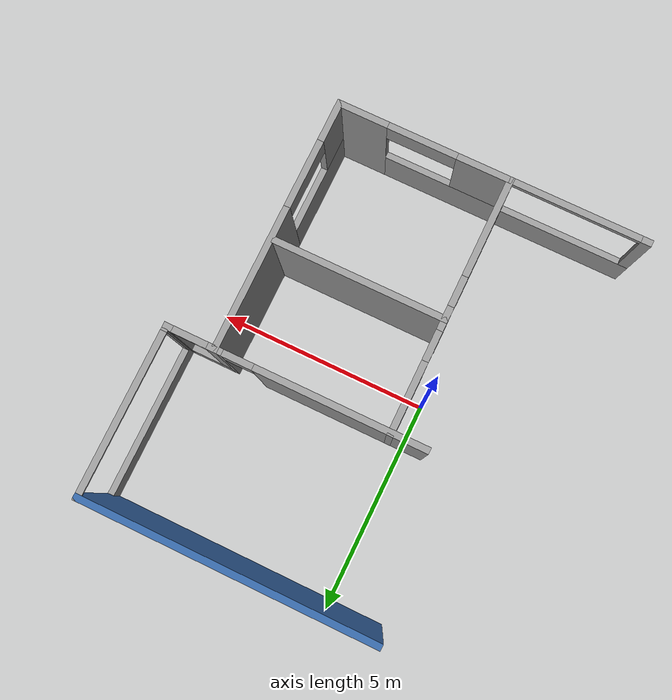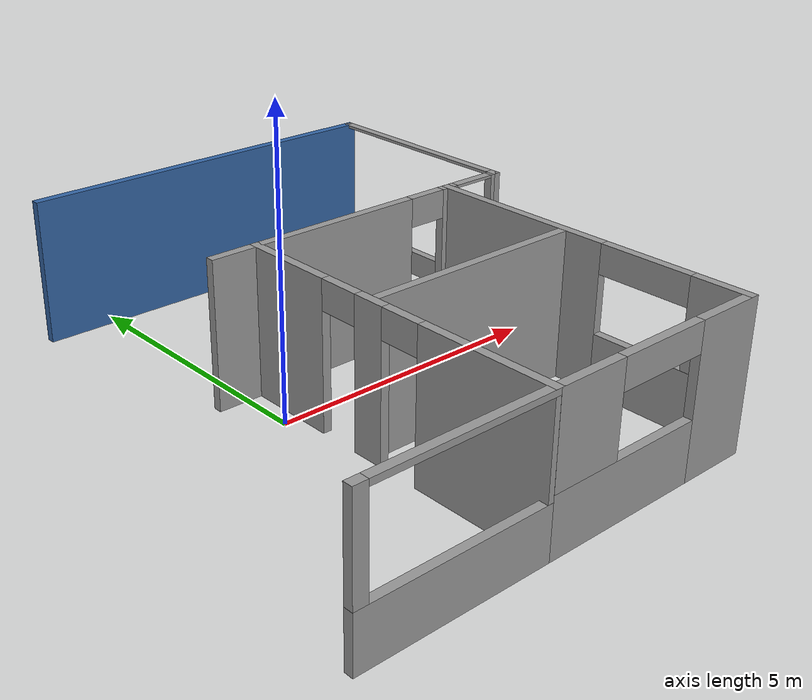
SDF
<sdf version="1.7">
 <model name="Myhouse">
  <link name="Wall_0">
   <pose>2.10158 4.8407 0 0 -0 0</pose>
   <visual name="Wall_0_Visual">
    <pose>0 0 1.25 0 -0 0</pose>
    <geometry><box><size>6.75 0.15 2.5</size></box></geometry>
    <material>
     <script><uri>file://media/materials/scripts/gazebo.material</uri><name>Gazebo/Grey</name></script>
     <ambient>0.203922 0.396078 0.643137 1</ambient>
     <shader type="pixel"/>
    </material>
    <meta><layer>0</layer></meta>
   </visual>
   <collision name="Wall_0_Collision">
    <pose>0 0 1.25 0 -0 0</pose>
    <geometry><box><size>6.75 0.15 2.5</size></box></geometry>
    <surface>
     <friction>
      <ode><mu>1</mu><mu2>1</mu2><fdir1>0 0 0</fdir1><slip1>0</slip1><slip2>0</slip2></ode>
      <torsional>
       <coefficient>1</coefficient>
       <patch_radius>0</patch_radius>
       <surface_radius>0</surface_radius>
       <use_patch_radius>1</use_patch_radius>
       <ode><slip>0</slip></ode>
      </torsional>
     </friction>
     <bounce><restitution_coefficient>0</restitution_coefficient><threshold>1e+06</threshold></bounce>
     <contact>
      <collide_without_contact>0</collide_without_contact>
      <collide_without_contact_bitmask>1</collide_without_contact_bitmask>
      <collide_bitmask>1</collide_bitmask>
      <ode>
       <soft_cfm>0</soft_cfm>
       <soft_erp>0.2</soft_erp>
       <kp>1e+13</kp>
       <kd>1</kd>
       <max_vel>0.01</max_vel>
       <min_depth>0</min_depth>
      </ode>
      <bullet>
       <split_impulse>1</split_impulse>
       <split_impulse_penetration_threshold>-0.01</split_impulse_penetration_threshold>
       <soft_cfm>0</soft_cfm>
       <soft_erp>0.2</soft_erp>
       <kp>1e+13</kp>
       <kd>1</kd>
      </bullet>
     </contact>
    </surface>
   </collision>
  </link>
  <link name="Wall_1">
   <pose>5.39997 2.92495 0 0 0 -1.57164</pose>
   <visual name="Wall_1_Visual_0">
    <pose>-1.94391 0 1.25 0 -0 0</pose>
    <geometry><box><size>0.093734 0.15 2.5</size></box></geometry>
    <material>
     <script><uri>file://media/materials/scripts/gazebo.material</uri><name>Gazebo/Grey</name></script>
     <ambient>1 1 1 1</ambient>
     <shader type="pixel"/>
    </material>
    <meta><layer>0</layer></meta>
   </visual>
   <visual name="Wall_1_Visual_1">
    <pose>0.046867 0 0.225 0 -0 0</pose>
    <geometry><box><size>3.88783 0.15 0.45</size></box></geometry>
    <material>
     <script><uri>file://media/materials/scripts/gazebo.material</uri><name>Gazebo/Grey</name></script>
     <ambient>1 1 1 1</ambient>
     <shader type="pixel"/>
    </material>
    <meta><layer>0</layer></meta>
   </visual>
   <visual name="Wall_1_Visual_2">
    <pose>1.89687 0 1.475 0 -0 0</pose>
    <geometry><box><size>0.187826 0.15 2.05</size></box></geometry>
    <material>
     <script><uri>file://media/materials/scripts/gazebo.material</uri><name>Gazebo/Grey</name></script>
     <ambient>1 1 1 1</ambient>
     <shader type="pixel"/>
    </material>
    <meta><layer>0</layer></meta>
   </visual>
   <visual name="Wall_1_Visual_3">
    <pose>-0.047046 0 2.475 0 -0 0</pose>
    <geometry><box><size>3.7 0.15 0.05</size></box></geometry>
    <material>
     <script><uri>file://media/materials/scripts/gazebo.material</uri><name>Gazebo/Grey</name></script>
     <ambient>1 1 1 1</ambient>
     <shader type="pixel"/>
    </material>
    <meta><layer>0</layer></meta>
   </visual>
   <collision name="Wall_1_Collision_0">
    <pose>-1.94391 0 1.25 0 -0 0</pose>
    <geometry><box><size>0.093734 0.15 2.5</size></box></geometry>
    <surface>
     <friction>
      <ode><mu>1</mu><mu2>1</mu2><fdir1>0 0 0</fdir1><slip1>0</slip1><slip2>0</slip2></ode>
      <torsional>
       <coefficient>1</coefficient>
       <patch_radius>0</patch_radius>
       <surface_radius>0</surface_radius>
       <use_patch_radius>1</use_patch_radius>
       <ode><slip>0</slip></ode>
      </torsional>
     </friction>
     <bounce><restitution_coefficient>0</restitution_coefficient><threshold>1e+06</threshold></bounce>
     <contact>
      <collide_without_contact>0</collide_without_contact>
      <collide_without_contact_bitmask>1</collide_without_contact_bitmask>
      <collide_bitmask>1</collide_bitmask>
      <ode>
       <soft_cfm>0</soft_cfm>
       <soft_erp>0.2</soft_erp>
       <kp>1e+13</kp>
       <kd>1</kd>
       <max_vel>0.01</max_vel>
       <min_depth>0</min_depth>
      </ode>
      <bullet>
       <split_impulse>1</split_impulse>
       <split_impulse_penetration_threshold>-0.01</split_impulse_penetration_threshold>
       <soft_cfm>0</soft_cfm>
       <soft_erp>0.2</soft_erp>
       <kp>1e+13</kp>
       <kd>1</kd>
      </bullet>
     </contact>
    </surface>
   </collision>
   <collision name="Wall_1_Collision_1">
    <pose>0.046867 0 0.225 0 -0 0</pose>
    <geometry><box><size>3.88783 0.15 0.45</size></box></geometry>
    <surface>
     <friction>
      <ode><mu>1</mu><mu2>1</mu2><fdir1>0 0 0</fdir1><slip1>0</slip1><slip2>0</slip2></ode>
      <torsional>
       <coefficient>1</coefficient>
       <patch_radius>0</patch_radius>
       <surface_radius>0</surface_radius>
       <use_patch_radius>1</use_patch_radius>
       <ode><slip>0</slip></ode>
      </torsional>
     </friction>
     <bounce><restitution_coefficient>0</restitution_coefficient><threshold>1e+06</threshold></bounce>
     <contact>
      <collide_without_contact>0</collide_without_contact>
      <collide_without_contact_bitmask>1</collide_without_contact_bitmask>
      <collide_bitmask>1</collide_bitmask>
      <ode>
       <soft_cfm>0</soft_cfm>
       <soft_erp>0.2</soft_erp>
       <kp>1e+13</kp>
       <kd>1</kd>
       <max_vel>0.01</max_vel>
       <min_depth>0</min_depth>
      </ode>
      <bullet>
       <split_impulse>1</split_impulse>
       <split_impulse_penetration_threshold>-0.01</split_impulse_penetration_threshold>
       <soft_cfm>0</soft_cfm>
       <soft_erp>0.2</soft_erp>
       <kp>1e+13</kp>
       <kd>1</kd>
      </bullet>
     </contact>
    </surface>
   </collision>
   <collision name="Wall_1_Collision_2">
    <pose>1.89687 0 1.475 0 -0 0</pose>
    <geometry><box><size>0.187826 0.15 2.05</size></box></geometry>
    <surface>
     <friction>
      <ode><mu>1</mu><mu2>1</mu2><fdir1>0 0 0</fdir1><slip1>0</slip1><slip2>0</slip2></ode>
      <torsional>
       <coefficient>1</coefficient>
       <patch_radius>0</patch_radius>
       <surface_radius>0</surface_radius>
       <use_patch_radius>1</use_patch_radius>
       <ode><slip>0</slip></ode>
      </torsional>
     </friction>
     <bounce><restitution_coefficient>0</restitution_coefficient><threshold>1e+06</threshold></bounce>
     <contact>
      <collide_without_contact>0</collide_without_contact>
      <collide_without_contact_bitmask>1</collide_without_contact_bitmask>
      <collide_bitmask>1</collide_bitmask>
      <ode>
       <soft_cfm>0</soft_cfm>
       <soft_erp>0.2</soft_erp>
       <kp>1e+13</kp>
       <kd>1</kd>
       <max_vel>0.01</max_vel>
       <min_depth>0</min_depth>
      </ode>
      <bullet>
       <split_impulse>1</split_impulse>
       <split_impulse_penetration_threshold>-0.01</split_impulse_penetration_threshold>
       <soft_cfm>0</soft_cfm>
       <soft_erp>0.2</soft_erp>
       <kp>1e+13</kp>
       <kd>1</kd>
      </bullet>
     </contact>
    </surface>
   </collision>
   <collision name="Wall_1_Collision_3">
    <pose>-0.047046 0 2.475 0 -0 0</pose>
    <geometry><box><size>3.7 0.15 0.05</size></box></geometry>
    <surface>
     <friction>
      <ode><mu>1</mu><mu2>1</mu2><fdir1>0 0 0</fdir1><slip1>0</slip1><slip2>0</slip2></ode>
      <torsional>
       <coefficient>1</coefficient>
       <patch_radius>0</patch_radius>
       <surface_radius>0</surface_radius>
       <use_patch_radius>1</use_patch_radius>
       <ode><slip>0</slip></ode>
      </torsional>
     </friction>
     <bounce><restitution_coefficient>0</restitution_coefficient><threshold>1e+06</threshold></bounce>
     <contact>
      <collide_without_contact>0</collide_without_contact>
      <collide_without_contact_bitmask>1</collide_without_contact_bitmask>
      <collide_bitmask>1</collide_bitmask>
      <ode>
       <soft_cfm>0</soft_cfm>
       <soft_erp>0.2</soft_erp>
       <kp>1e+13</kp>
       <kd>1</kd>
       <max_vel>0.01</max_vel>
       <min_depth>0</min_depth>
      </ode>
      <bullet>
       <split_impulse>1</split_impulse>
       <split_impulse_penetration_threshold>-0.01</split_impulse_penetration_threshold>
       <soft_cfm>0</soft_cfm>
       <soft_erp>0.2</soft_erp>
       <kp>1e+13</kp>
       <kd>1</kd>
      </bullet>
     </contact>
    </surface>
   </collision>
  </link>
  <link name="Wall_13">
   <pose>1.92675 1.00921 0 0 -0 3.14159</pose>
   <visual name="Wall_13_Visual_0">
    <pose>-2.32196 0 1.25 0 -0 0</pose>
    <geometry><box><size>0.249291 0.15 2.5</size></box></geometry>
    <material>
     <script><uri>file://media/materials/scripts/gazebo.material</uri><name>Gazebo/Grey</name></script>
     <ambient>1 1 1 1</ambient>
     <shader type="pixel"/>
    </material>
    <meta><layer>0</layer></meta>
   </visual>
   <visual name="Wall_13_Visual_1">
    <pose>0.474646 0 1.25 0 -0 0</pose>
    <geometry><box><size>3.94392 0.15 2.5</size></box></geometry>
    <material>
     <script><uri>file://media/materials/scripts/gazebo.material</uri><name>Gazebo/Grey</name></script>
     <ambient>1 1 1 1</ambient>
     <shader type="pixel"/>
    </material>
    <meta><layer>0</layer></meta>
   </visual>
   <visual name="Wall_13_Visual_2">
    <pose>-1.84732 0 2.25 0 -0 0</pose>
    <geometry><box><size>0.7 0.15 0.5</size></box></geometry>
    <material>
     <script><uri>file://media/materials/scripts/gazebo.material</uri><name>Gazebo/Grey</name></script>
     <ambient>1 1 1 1</ambient>
     <shader type="pixel"/>
    </material>
    <meta><layer>0</layer></meta>
   </visual>
   <collision name="Wall_13_Collision_0">
    <pose>-2.32196 0 1.25 0 -0 0</pose>
    <geometry><box><size>0.249291 0.15 2.5</size></box></geometry>
    <surface>
     <friction>
      <ode><mu>1</mu><mu2>1</mu2><fdir1>0 0 0</fdir1><slip1>0</slip1><slip2>0</slip2></ode>
      <torsional>
       <coefficient>1</coefficient>
       <patch_radius>0</patch_radius>
       <surface_radius>0</surface_radius>
       <use_patch_radius>1</use_patch_radius>
       <ode><slip>0</slip></ode>
      </torsional>
     </friction>
     <bounce><restitution_coefficient>0</restitution_coefficient><threshold>1e+06</threshold></bounce>
     <contact>
      <collide_without_contact>0</collide_without_contact>
      <collide_without_contact_bitmask>1</collide_without_contact_bitmask>
      <collide_bitmask>1</collide_bitmask>
      <ode>
       <soft_cfm>0</soft_cfm>
       <soft_erp>0.2</soft_erp>
       <kp>1e+13</kp>
       <kd>1</kd>
       <max_vel>0.01</max_vel>
       <min_depth>0</min_depth>
      </ode>
      <bullet>
       <split_impulse>1</split_impulse>
       <split_impulse_penetration_threshold>-0.01</split_impulse_penetration_threshold>
       <soft_cfm>0</soft_cfm>
       <soft_erp>0.2</soft_erp>
       <kp>1e+13</kp>
       <kd>1</kd>
      </bullet>
     </contact>
    </surface>
   </collision>
   <collision name="Wall_13_Collision_1">
    <pose>0.474646 0 1.25 0 -0 0</pose>
    <geometry><box><size>3.94392 0.15 2.5</size></box></geometry>
    <surface>
     <friction>
      <ode><mu>1</mu><mu2>1</mu2><fdir1>0 0 0</fdir1><slip1>0</slip1><slip2>0</slip2></ode>
      <torsional>
       <coefficient>1</coefficient>
       <patch_radius>0</patch_radius>
       <surface_radius>0</surface_radius>
       <use_patch_radius>1</use_patch_radius>
       <ode><slip>0</slip></ode>
      </torsional>
     </friction>
     <bounce><restitution_coefficient>0</restitution_coefficient><threshold>1e+06</threshold></bounce>
     <contact>
      <collide_without_contact>0</collide_without_contact>
      <collide_without_contact_bitmask>1</collide_without_contact_bitmask>
      <collide_bitmask>1</collide_bitmask>
      <ode>
       <soft_cfm>0</soft_cfm>
       <soft_erp>0.2</soft_erp>
       <kp>1e+13</kp>
       <kd>1</kd>
       <max_vel>0.01</max_vel>
       <min_depth>0</min_depth>
      </ode>
      <bullet>
       <split_impulse>1</split_impulse>
       <split_impulse_penetration_threshold>-0.01</split_impulse_penetration_threshold>
       <soft_cfm>0</soft_cfm>
       <soft_erp>0.2</soft_erp>
       <kp>1e+13</kp>
       <kd>1</kd>
      </bullet>
     </contact>
    </surface>
   </collision>
   <collision name="Wall_13_Collision_2">
    <pose>-1.84732 0 2.25 0 -0 0</pose>
    <geometry><box><size>0.7 0.15 0.5</size></box></geometry>
    <surface>
     <friction>
      <ode><mu>1</mu><mu2>1</mu2><fdir1>0 0 0</fdir1><slip1>0</slip1><slip2>0</slip2></ode>
      <torsional>
       <coefficient>1</coefficient>
       <patch_radius>0</patch_radius>
       <surface_radius>0</surface_radius>
       <use_patch_radius>1</use_patch_radius>
       <ode><slip>0</slip></ode>
      </torsional>
     </friction>
     <bounce><restitution_coefficient>0</restitution_coefficient><threshold>1e+06</threshold></bounce>
     <contact>
      <collide_without_contact>0</collide_without_contact>
      <collide_without_contact_bitmask>1</collide_without_contact_bitmask>
      <collide_bitmask>1</collide_bitmask>
      <ode>
       <soft_cfm>0</soft_cfm>
       <soft_erp>0.2</soft_erp>
       <kp>1e+13</kp>
       <kd>1</kd>
       <max_vel>0.01</max_vel>
       <min_depth>0</min_depth>
      </ode>
      <bullet>
       <split_impulse>1</split_impulse>
       <split_impulse_penetration_threshold>-0.01</split_impulse_penetration_threshold>
       <soft_cfm>0</soft_cfm>
       <soft_erp>0.2</soft_erp>
       <kp>1e+13</kp>
       <kd>1</kd>
      </bullet>
     </contact>
    </surface>
   </collision>
  </link>
  <link name="Wall_17">
   <pose>2.26458 -1.5613 0 0 -0 3.14159</pose>
   <visual name="Wall_17_Visual">
    <pose>0 0 1.25 0 -0 0</pose>
    <geometry><box><size>4 0.15 2.5</size></box></geometry>
    <material>
     <script><uri>file://media/materials/scripts/gazebo.material</uri><name>Gazebo/Grey</name></script>
     <ambient>1 1 1 1</ambient>
     <shader type="pixel"/>
    </material>
    <meta><layer>0</layer></meta>
   </visual>
   <collision name="Wall_17_Collision">
    <pose>0 0 1.25 0 -0 0</pose>
    <geometry><box><size>4 0.15 2.5</size></box></geometry>
    <surface>
     <friction>
      <ode><mu>1</mu><mu2>1</mu2><fdir1>0 0 0</fdir1><slip1>0</slip1><slip2>0</slip2></ode>
      <torsional>
       <coefficient>1</coefficient>
       <patch_radius>0</patch_radius>
       <surface_radius>0</surface_radius>
       <use_patch_radius>1</use_patch_radius>
       <ode><slip>0</slip></ode>
      </torsional>
     </friction>
     <bounce><restitution_coefficient>0</restitution_coefficient><threshold>1e+06</threshold></bounce>
     <contact>
      <collide_without_contact>0</collide_without_contact>
      <collide_without_contact_bitmask>1</collide_without_contact_bitmask>
      <collide_bitmask>1</collide_bitmask>
      <ode>
       <soft_cfm>0</soft_cfm>
       <soft_erp>0.2</soft_erp>
       <kp>1e+13</kp>
       <kd>1</kd>
       <max_vel>0.01</max_vel>
       <min_depth>0</min_depth>
      </ode>
      <bullet>
       <split_impulse>1</split_impulse>
       <split_impulse_penetration_threshold>-0.01</split_impulse_penetration_threshold>
       <soft_cfm>0</soft_cfm>
       <soft_erp>0.2</soft_erp>
       <kp>1e+13</kp>
       <kd>1</kd>
      </bullet>
     </contact>
    </surface>
   </collision>
  </link>
  <link name="Wall_23">
   <pose>0.334124 -1.9144 0 0 -0 1.5708</pose>
   <visual name="Wall_23_Visual_0">
    <pose>-1.81879 0 1.25 0 -0 0</pose>
    <geometry><box><size>2.36243 0.15 2.5</size></box></geometry>
    <material>
     <script><uri>file://media/materials/scripts/gazebo.material</uri><name>Gazebo/Grey</name></script>
     <ambient>1 1 1 1</ambient>
     <shader type="pixel"/>
    </material>
    <meta><layer>0</layer></meta>
   </visual>
   <visual name="Wall_23_Visual_1">
    <pose>0.340045 0 1.25 0 -0 0</pose>
    <geometry><box><size>0.555232 0.15 2.5</size></box></geometry>
    <material>
     <script><uri>file://media/materials/scripts/gazebo.material</uri><name>Gazebo/Grey</name></script>
     <ambient>1 1 1 1</ambient>
     <shader type="pixel"/>
    </material>
    <meta><layer>0</layer></meta>
   </visual>
   <visual name="Wall_23_Visual_2">
    <pose>2.15883 0 1.25 0 -0 0</pose>
    <geometry><box><size>1.68234 0.15 2.5</size></box></geometry>
    <material>
     <script><uri>file://media/materials/scripts/gazebo.material</uri><name>Gazebo/Grey</name></script>
     <ambient>1 1 1 1</ambient>
     <shader type="pixel"/>
    </material>
    <meta><layer>0</layer></meta>
   </visual>
   <visual name="Wall_23_Visual_3">
    <pose>-0.287571 0 2.25 0 -0 0</pose>
    <geometry><box><size>0.7 0.15 0.5</size></box></geometry>
    <material>
     <script><uri>file://media/materials/scripts/gazebo.material</uri><name>Gazebo/Grey</name></script>
     <ambient>1 1 1 1</ambient>
     <shader type="pixel"/>
    </material>
    <meta><layer>0</layer></meta>
   </visual>
   <visual name="Wall_23_Visual_4">
    <pose>0.967661 0 2.25 0 -0 0</pose>
    <geometry><box><size>0.7 0.15 0.5</size></box></geometry>
    <material>
     <script><uri>file://media/materials/scripts/gazebo.material</uri><name>Gazebo/Grey</name></script>
     <ambient>1 1 1 1</ambient>
     <shader type="pixel"/>
    </material>
    <meta><layer>0</layer></meta>
   </visual>
   <collision name="Wall_23_Collision_0">
    <pose>-1.81879 0 1.25 0 -0 0</pose>
    <geometry><box><size>2.36243 0.15 2.5</size></box></geometry>
    <surface>
     <friction>
      <ode><mu>1</mu><mu2>1</mu2><fdir1>0 0 0</fdir1><slip1>0</slip1><slip2>0</slip2></ode>
      <torsional>
       <coefficient>1</coefficient>
       <patch_radius>0</patch_radius>
       <surface_radius>0</surface_radius>
       <use_patch_radius>1</use_patch_radius>
       <ode><slip>0</slip></ode>
      </torsional>
     </friction>
     <bounce><restitution_coefficient>0</restitution_coefficient><threshold>1e+06</threshold></bounce>
     <contact>
      <collide_without_contact>0</collide_without_contact>
      <collide_without_contact_bitmask>1</collide_without_contact_bitmask>
      <collide_bitmask>1</collide_bitmask>
      <ode>
       <soft_cfm>0</soft_cfm>
       <soft_erp>0.2</soft_erp>
       <kp>1e+13</kp>
       <kd>1</kd>
       <max_vel>0.01</max_vel>
       <min_depth>0</min_depth>
      </ode>
      <bullet>
       <split_impulse>1</split_impulse>
       <split_impulse_penetration_threshold>-0.01</split_impulse_penetration_threshold>
       <soft_cfm>0</soft_cfm>
       <soft_erp>0.2</soft_erp>
       <kp>1e+13</kp>
       <kd>1</kd>
      </bullet>
     </contact>
    </surface>
   </collision>
   <collision name="Wall_23_Collision_1">
    <pose>0.340045 0 1.25 0 -0 0</pose>
    <geometry><box><size>0.555232 0.15 2.5</size></box></geometry>
    <surface>
     <friction>
      <ode><mu>1</mu><mu2>1</mu2><fdir1>0 0 0</fdir1><slip1>0</slip1><slip2>0</slip2></ode>
      <torsional>
       <coefficient>1</coefficient>
       <patch_radius>0</patch_radius>
       <surface_radius>0</surface_radius>
       <use_patch_radius>1</use_patch_radius>
       <ode><slip>0</slip></ode>
      </torsional>
     </friction>
     <bounce><restitution_coefficient>0</restitution_coefficient><threshold>1e+06</threshold></bounce>
     <contact>
      <collide_without_contact>0</collide_without_contact>
      <collide_without_contact_bitmask>1</collide_without_contact_bitmask>
      <collide_bitmask>1</collide_bitmask>
      <ode>
       <soft_cfm>0</soft_cfm>
       <soft_erp>0.2</soft_erp>
       <kp>1e+13</kp>
       <kd>1</kd>
       <max_vel>0.01</max_vel>
       <min_depth>0</min_depth>
      </ode>
      <bullet>
       <split_impulse>1</split_impulse>
       <split_impulse_penetration_threshold>-0.01</split_impulse_penetration_threshold>
       <soft_cfm>0</soft_cfm>
       <soft_erp>0.2</soft_erp>
       <kp>1e+13</kp>
       <kd>1</kd>
      </bullet>
     </contact>
    </surface>
   </collision>
   <collision name="Wall_23_Collision_2">
    <pose>2.15883 0 1.25 0 -0 0</pose>
    <geometry><box><size>1.68234 0.15 2.5</size></box></geometry>
    <surface>
     <friction>
      <ode><mu>1</mu><mu2>1</mu2><fdir1>0 0 0</fdir1><slip1>0</slip1><slip2>0</slip2></ode>
      <torsional>
       <coefficient>1</coefficient>
       <patch_radius>0</patch_radius>
       <surface_radius>0</surface_radius>
       <use_patch_radius>1</use_patch_radius>
       <ode><slip>0</slip></ode>
      </torsional>
     </friction>
     <bounce><restitution_coefficient>0</restitution_coefficient><threshold>1e+06</threshold></bounce>
     <contact>
      <collide_without_contact>0</collide_without_contact>
      <collide_without_contact_bitmask>1</collide_without_contact_bitmask>
      <collide_bitmask>1</collide_bitmask>
      <ode>
       <soft_cfm>0</soft_cfm>
       <soft_erp>0.2</soft_erp>
       <kp>1e+13</kp>
       <kd>1</kd>
       <max_vel>0.01</max_vel>
       <min_depth>0</min_depth>
      </ode>
      <bullet>
       <split_impulse>1</split_impulse>
       <split_impulse_penetration_threshold>-0.01</split_impulse_penetration_threshold>
       <soft_cfm>0</soft_cfm>
       <soft_erp>0.2</soft_erp>
       <kp>1e+13</kp>
       <kd>1</kd>
      </bullet>
     </contact>
    </surface>
   </collision>
   <collision name="Wall_23_Collision_3">
    <pose>-0.287571 0 2.25 0 -0 0</pose>
    <geometry><box><size>0.7 0.15 0.5</size></box></geometry>
    <surface>
     <friction>
      <ode><mu>1</mu><mu2>1</mu2><fdir1>0 0 0</fdir1><slip1>0</slip1><slip2>0</slip2></ode>
      <torsional>
       <coefficient>1</coefficient>
       <patch_radius>0</patch_radius>
       <surface_radius>0</surface_radius>
       <use_patch_radius>1</use_patch_radius>
       <ode><slip>0</slip></ode>
      </torsional>
     </friction>
     <bounce><restitution_coefficient>0</restitution_coefficient><threshold>1e+06</threshold></bounce>
     <contact>
      <collide_without_contact>0</collide_without_contact>
      <collide_without_contact_bitmask>1</collide_without_contact_bitmask>
      <collide_bitmask>1</collide_bitmask>
      <ode>
       <soft_cfm>0</soft_cfm>
       <soft_erp>0.2</soft_erp>
       <kp>1e+13</kp>
       <kd>1</kd>
       <max_vel>0.01</max_vel>
       <min_depth>0</min_depth>
      </ode>
      <bullet>
       <split_impulse>1</split_impulse>
       <split_impulse_penetration_threshold>-0.01</split_impulse_penetration_threshold>
       <soft_cfm>0</soft_cfm>
       <soft_erp>0.2</soft_erp>
       <kp>1e+13</kp>
       <kd>1</kd>
      </bullet>
     </contact>
    </surface>
   </collision>
   <collision name="Wall_23_Collision_4">
    <pose>0.967661 0 2.25 0 -0 0</pose>
    <geometry><box><size>0.7 0.15 0.5</size></box></geometry>
    <surface>
     <friction>
      <ode><mu>1</mu><mu2>1</mu2><fdir1>0 0 0</fdir1><slip1>0</slip1><slip2>0</slip2></ode>
      <torsional>
       <coefficient>1</coefficient>
       <patch_radius>0</patch_radius>
       <surface_radius>0</surface_radius>
       <use_patch_radius>1</use_patch_radius>
       <ode><slip>0</slip></ode>
      </torsional>
     </friction>
     <bounce><restitution_coefficient>0</restitution_coefficient><threshold>1e+06</threshold></bounce>
     <contact>
      <collide_without_contact>0</collide_without_contact>
      <collide_without_contact_bitmask>1</collide_without_contact_bitmask>
      <collide_bitmask>1</collide_bitmask>
      <ode>
       <soft_cfm>0</soft_cfm>
       <soft_erp>0.2</soft_erp>
       <kp>1e+13</kp>
       <kd>1</kd>
       <max_vel>0.01</max_vel>
       <min_depth>0</min_depth>
      </ode>
      <bullet>
       <split_impulse>1</split_impulse>
       <split_impulse_penetration_threshold>-0.01</split_impulse_penetration_threshold>
       <soft_cfm>0</soft_cfm>
       <soft_erp>0.2</soft_erp>
       <kp>1e+13</kp>
       <kd>1</kd>
      </bullet>
     </contact>
    </surface>
   </collision>
  </link>
  <link name="Wall_5">
   <pose>4.84836 1.00921 0 0 -0 3.14159</pose>
   <visual name="Wall_5_Visual_0">
    <pose>-0.519773 0 1.25 0 -0 0</pose>
    <geometry><box><size>0.210454 0.15 2.5</size></box></geometry>
    <material>
     <script><uri>file://media/materials/scripts/gazebo.material</uri><name>Gazebo/Grey</name></script>
     <ambient>1 1 1 1</ambient>
     <shader type="pixel"/>
    </material>
    <meta><layer>0</layer></meta>
   </visual>
   <visual name="Wall_5_Visual_1">
    <pose>0.105227 0 0.225 0 -0 0</pose>
    <geometry><box><size>1.03955 0.15 0.45</size></box></geometry>
    <material>
     <script><uri>file://media/materials/scripts/gazebo.material</uri><name>Gazebo/Grey</name></script>
     <ambient>1 1 1 1</ambient>
     <shader type="pixel"/>
    </material>
    <meta><layer>0</layer></meta>
   </visual>
   <visual name="Wall_5_Visual_2">
    <pose>0.505227 0 1.475 0 -0 0</pose>
    <geometry><box><size>0.239546 0.15 2.05</size></box></geometry>
    <material>
     <script><uri>file://media/materials/scripts/gazebo.material</uri><name>Gazebo/Grey</name></script>
     <ambient>1 1 1 1</ambient>
     <shader type="pixel"/>
    </material>
    <meta><layer>0</layer></meta>
   </visual>
   <visual name="Wall_5_Visual_3">
    <pose>-0.014546 0 2.475 0 -0 0</pose>
    <geometry><box><size>0.8 0.15 0.05</size></box></geometry>
    <material>
     <script><uri>file://media/materials/scripts/gazebo.material</uri><name>Gazebo/Grey</name></script>
     <ambient>1 1 1 1</ambient>
     <shader type="pixel"/>
    </material>
    <meta><layer>0</layer></meta>
   </visual>
   <collision name="Wall_5_Collision_0">
    <pose>-0.519773 0 1.25 0 -0 0</pose>
    <geometry><box><size>0.210454 0.15 2.5</size></box></geometry>
    <surface>
     <friction>
      <ode><mu>1</mu><mu2>1</mu2><fdir1>0 0 0</fdir1><slip1>0</slip1><slip2>0</slip2></ode>
      <torsional>
       <coefficient>1</coefficient>
       <patch_radius>0</patch_radius>
       <surface_radius>0</surface_radius>
       <use_patch_radius>1</use_patch_radius>
       <ode><slip>0</slip></ode>
      </torsional>
     </friction>
     <bounce><restitution_coefficient>0</restitution_coefficient><threshold>1e+06</threshold></bounce>
     <contact>
      <collide_without_contact>0</collide_without_contact>
      <collide_without_contact_bitmask>1</collide_without_contact_bitmask>
      <collide_bitmask>1</collide_bitmask>
      <ode>
       <soft_cfm>0</soft_cfm>
       <soft_erp>0.2</soft_erp>
       <kp>1e+13</kp>
       <kd>1</kd>
       <max_vel>0.01</max_vel>
       <min_depth>0</min_depth>
      </ode>
      <bullet>
       <split_impulse>1</split_impulse>
       <split_impulse_penetration_threshold>-0.01</split_impulse_penetration_threshold>
       <soft_cfm>0</soft_cfm>
       <soft_erp>0.2</soft_erp>
       <kp>1e+13</kp>
       <kd>1</kd>
      </bullet>
     </contact>
    </surface>
   </collision>
   <collision name="Wall_5_Collision_2">
    <pose>0.505227 0 1.475 0 -0 0</pose>
    <geometry><box><size>0.239546 0.15 2.05</size></box></geometry>
    <surface>
     <friction>
      <ode><mu>1</mu><mu2>1</mu2><fdir1>0 0 0</fdir1><slip1>0</slip1><slip2>0</slip2></ode>
      <torsional>
       <coefficient>1</coefficient>
       <patch_radius>0</patch_radius>
       <surface_radius>0</surface_radius>
       <use_patch_radius>1</use_patch_radius>
       <ode><slip>0</slip></ode>
      </torsional>
     </friction>
     <bounce><restitution_coefficient>0</restitution_coefficient><threshold>1e+06</threshold></bounce>
     <contact>
      <collide_without_contact>0</collide_without_contact>
      <collide_without_contact_bitmask>1</collide_without_contact_bitmask>
      <collide_bitmask>1</collide_bitmask>
      <ode>
       <soft_cfm>0</soft_cfm>
       <soft_erp>0.2</soft_erp>
       <kp>1e+13</kp>
       <kd>1</kd>
       <max_vel>0.01</max_vel>
       <min_depth>0</min_depth>
      </ode>
      <bullet>
       <split_impulse>1</split_impulse>
       <split_impulse_penetration_threshold>-0.01</split_impulse_penetration_threshold>
       <soft_cfm>0</soft_cfm>
       <soft_erp>0.2</soft_erp>
       <kp>1e+13</kp>
       <kd>1</kd>
      </bullet>
     </contact>
    </surface>
   </collision>
   <collision name="Wall_5_Collision_1">
    <pose>0.105227 0 0.225 0 -0 0</pose>
    <geometry><box><size>1.03955 0.15 0.45</size></box></geometry>
    <surface>
     <friction>
      <ode><mu>1</mu><mu2>1</mu2><fdir1>0 0 0</fdir1><slip1>0</slip1><slip2>0</slip2></ode>
      <torsional>
       <coefficient>1</coefficient>
       <patch_radius>0</patch_radius>
       <surface_radius>0</surface_radius>
       <use_patch_radius>1</use_patch_radius>
       <ode><slip>0</slip></ode>
      </torsional>
     </friction>
     <bounce><restitution_coefficient>0</restitution_coefficient><threshold>1e+06</threshold></bounce>
     <contact>
      <collide_without_contact>0</collide_without_contact>
      <collide_without_contact_bitmask>1</collide_without_contact_bitmask>
      <collide_bitmask>1</collide_bitmask>
      <ode>
       <soft_cfm>0</soft_cfm>
       <soft_erp>0.2</soft_erp>
       <kp>1e+13</kp>
       <kd>1</kd>
       <max_vel>0.01</max_vel>
       <min_depth>0</min_depth>
      </ode>
      <bullet>
       <split_impulse>1</split_impulse>
       <split_impulse_penetration_threshold>-0.01</split_impulse_penetration_threshold>
       <soft_cfm>0</soft_cfm>
       <soft_erp>0.2</soft_erp>
       <kp>1e+13</kp>
       <kd>1</kd>
      </bullet>
     </contact>
    </surface>
   </collision>
   <collision name="Wall_5_Collision_3">
    <pose>-0.014546 0 2.475 0 -0 0</pose>
    <geometry><box><size>0.8 0.15 0.05</size></box></geometry>
    <surface>
     <friction>
      <ode><mu>1</mu><mu2>1</mu2><fdir1>0 0 0</fdir1><slip1>0</slip1><slip2>0</slip2></ode>
      <torsional>
       <coefficient>1</coefficient>
       <patch_radius>0</patch_radius>
       <surface_radius>0</surface_radius>
       <use_patch_radius>1</use_patch_radius>
       <ode><slip>0</slip></ode>
      </torsional>
     </friction>
     <bounce><restitution_coefficient>0</restitution_coefficient><threshold>1e+06</threshold></bounce>
     <contact>
      <collide_without_contact>0</collide_without_contact>
      <collide_without_contact_bitmask>1</collide_without_contact_bitmask>
      <collide_bitmask>1</collide_bitmask>
      <ode>
       <soft_cfm>0</soft_cfm>
       <soft_erp>0.2</soft_erp>
       <kp>1e+13</kp>
       <kd>1</kd>
       <max_vel>0.01</max_vel>
       <min_depth>0</min_depth>
      </ode>
      <bullet>
       <split_impulse>1</split_impulse>
       <split_impulse_penetration_threshold>-0.01</split_impulse_penetration_threshold>
       <soft_cfm>0</soft_cfm>
       <soft_erp>0.2</soft_erp>
       <kp>1e+13</kp>
       <kd>1</kd>
      </bullet>
     </contact>
    </surface>
   </collision>
  </link>
  <link name="Wall_6">
   <pose>4.29836 -1.91579 0 0 0 -1.5708</pose>
   <visual name="Wall_6_Visual_0">
    <pose>-1.29915 0 1.25 0 -0 0</pose>
    <geometry><box><size>3.4017 0.15 2.5</size></box></geometry>
    <material>
     <script><uri>file://media/materials/scripts/gazebo.material</uri><name>Gazebo/Grey</name></script>
     <ambient>1 1 1 1</ambient>
     <shader type="pixel"/>
    </material>
    <meta><layer>0</layer></meta>
   </visual>
   <visual name="Wall_6_Visual_1">
    <pose>1.70085 0 0.5 0 -0 0</pose>
    <geometry><box><size>2.5983 0.15 1</size></box></geometry>
    <material>
     <script><uri>file://media/materials/scripts/gazebo.material</uri><name>Gazebo/Grey</name></script>
     <ambient>1 1 1 1</ambient>
     <shader type="pixel"/>
    </material>
    <meta><layer>0</layer></meta>
   </visual>
   <visual name="Wall_6_Visual_2">
    <pose>2.50085 0 1.75 0 -0 0</pose>
    <geometry><box><size>0.998297 0.15 1.5</size></box></geometry>
    <material>
     <script><uri>file://media/materials/scripts/gazebo.material</uri><name>Gazebo/Grey</name></script>
     <ambient>1 1 1 1</ambient>
     <shader type="pixel"/>
    </material>
    <meta><layer>0</layer></meta>
   </visual>
   <visual name="Wall_6_Visual_3">
    <pose>1.2017 0 2.25 0 -0 0</pose>
    <geometry><box><size>1.6 0.15 0.5</size></box></geometry>
    <material>
     <script><uri>file://media/materials/scripts/gazebo.material</uri><name>Gazebo/Grey</name></script>
     <ambient>1 1 1 1</ambient>
     <shader type="pixel"/>
    </material>
    <meta><layer>0</layer></meta>
   </visual>
   <collision name="Wall_6_Collision_0">
    <pose>-1.29915 0 1.25 0 -0 0</pose>
    <geometry><box><size>3.4017 0.15 2.5</size></box></geometry>
    <surface>
     <friction>
      <ode><mu>1</mu><mu2>1</mu2><fdir1>0 0 0</fdir1><slip1>0</slip1><slip2>0</slip2></ode>
      <torsional>
       <coefficient>1</coefficient>
       <patch_radius>0</patch_radius>
       <surface_radius>0</surface_radius>
       <use_patch_radius>1</use_patch_radius>
       <ode><slip>0</slip></ode>
      </torsional>
     </friction>
     <bounce><restitution_coefficient>0</restitution_coefficient><threshold>1e+06</threshold></bounce>
     <contact>
      <collide_without_contact>0</collide_without_contact>
      <collide_without_contact_bitmask>1</collide_without_contact_bitmask>
      <collide_bitmask>1</collide_bitmask>
      <ode>
       <soft_cfm>0</soft_cfm>
       <soft_erp>0.2</soft_erp>
       <kp>1e+13</kp>
       <kd>1</kd>
       <max_vel>0.01</max_vel>
       <min_depth>0</min_depth>
      </ode>
      <bullet>
       <split_impulse>1</split_impulse>
       <split_impulse_penetration_threshold>-0.01</split_impulse_penetration_threshold>
       <soft_cfm>0</soft_cfm>
       <soft_erp>0.2</soft_erp>
       <kp>1e+13</kp>
       <kd>1</kd>
      </bullet>
     </contact>
    </surface>
   </collision>
   <collision name="Wall_6_Collision_1">
    <pose>1.70085 0 0.5 0 -0 0</pose>
    <geometry><box><size>2.5983 0.15 1</size></box></geometry>
    <surface>
     <friction>
      <ode><mu>1</mu><mu2>1</mu2><fdir1>0 0 0</fdir1><slip1>0</slip1><slip2>0</slip2></ode>
      <torsional>
       <coefficient>1</coefficient>
       <patch_radius>0</patch_radius>
       <surface_radius>0</surface_radius>
       <use_patch_radius>1</use_patch_radius>
       <ode><slip>0</slip></ode>
      </torsional>
     </friction>
     <bounce><restitution_coefficient>0</restitution_coefficient><threshold>1e+06</threshold></bounce>
     <contact>
      <collide_without_contact>0</collide_without_contact>
      <collide_without_contact_bitmask>1</collide_without_contact_bitmask>
      <collide_bitmask>1</collide_bitmask>
      <ode>
       <soft_cfm>0</soft_cfm>
       <soft_erp>0.2</soft_erp>
       <kp>1e+13</kp>
       <kd>1</kd>
       <max_vel>0.01</max_vel>
       <min_depth>0</min_depth>
      </ode>
      <bullet>
       <split_impulse>1</split_impulse>
       <split_impulse_penetration_threshold>-0.01</split_impulse_penetration_threshold>
       <soft_cfm>0</soft_cfm>
       <soft_erp>0.2</soft_erp>
       <kp>1e+13</kp>
       <kd>1</kd>
      </bullet>
     </contact>
    </surface>
   </collision>
   <collision name="Wall_6_Collision_2">
    <pose>2.50085 0 1.75 0 -0 0</pose>
    <geometry><box><size>0.998297 0.15 1.5</size></box></geometry>
    <surface>
     <friction>
      <ode><mu>1</mu><mu2>1</mu2><fdir1>0 0 0</fdir1><slip1>0</slip1><slip2>0</slip2></ode>
      <torsional>
       <coefficient>1</coefficient>
       <patch_radius>0</patch_radius>
       <surface_radius>0</surface_radius>
       <use_patch_radius>1</use_patch_radius>
       <ode><slip>0</slip></ode>
      </torsional>
     </friction>
     <bounce><restitution_coefficient>0</restitution_coefficient><threshold>1e+06</threshold></bounce>
     <contact>
      <collide_without_contact>0</collide_without_contact>
      <collide_without_contact_bitmask>1</collide_without_contact_bitmask>
      <collide_bitmask>1</collide_bitmask>
      <ode>
       <soft_cfm>0</soft_cfm>
       <soft_erp>0.2</soft_erp>
       <kp>1e+13</kp>
       <kd>1</kd>
       <max_vel>0.01</max_vel>
       <min_depth>0</min_depth>
      </ode>
      <bullet>
       <split_impulse>1</split_impulse>
       <split_impulse_penetration_threshold>-0.01</split_impulse_penetration_threshold>
       <soft_cfm>0</soft_cfm>
       <soft_erp>0.2</soft_erp>
       <kp>1e+13</kp>
       <kd>1</kd>
      </bullet>
     </contact>
    </surface>
   </collision>
   <collision name="Wall_6_Collision_3">
    <pose>1.2017 0 2.25 0 -0 0</pose>
    <geometry><box><size>1.6 0.15 0.5</size></box></geometry>
    <surface>
     <friction>
      <ode><mu>1</mu><mu2>1</mu2><fdir1>0 0 0</fdir1><slip1>0</slip1><slip2>0</slip2></ode>
      <torsional>
       <coefficient>1</coefficient>
       <patch_radius>0</patch_radius>
       <surface_radius>0</surface_radius>
       <use_patch_radius>1</use_patch_radius>
       <ode><slip>0</slip></ode>
      </torsional>
     </friction>
     <bounce><restitution_coefficient>0</restitution_coefficient><threshold>1e+06</threshold></bounce>
     <contact>
      <collide_without_contact>0</collide_without_contact>
      <collide_without_contact_bitmask>1</collide_without_contact_bitmask>
      <collide_bitmask>1</collide_bitmask>
      <ode>
       <soft_cfm>0</soft_cfm>
       <soft_erp>0.2</soft_erp>
       <kp>1e+13</kp>
       <kd>1</kd>
       <max_vel>0.01</max_vel>
       <min_depth>0</min_depth>
      </ode>
      <bullet>
       <split_impulse>1</split_impulse>
       <split_impulse_penetration_threshold>-0.01</split_impulse_penetration_threshold>
       <soft_cfm>0</soft_cfm>
       <soft_erp>0.2</soft_erp>
       <kp>1e+13</kp>
       <kd>1</kd>
      </bullet>
     </contact>
    </surface>
   </collision>
  </link>
  <link name="Wall_7">
   <pose>0.748356 -4.84079 0 0 -0 3.14159</pose>
   <visual name="Wall_7_Visual_0">
    <pose>-3.01652 0 1.25 0 -0 0</pose>
    <geometry><box><size>1.21696 0.15 2.5</size></box></geometry>
    <material>
     <script><uri>file://media/materials/scripts/gazebo.material</uri><name>Gazebo/Grey</name></script>
     <ambient>1 1 1 1</ambient>
     <shader type="pixel"/>
    </material>
    <meta><layer>0</layer></meta>
   </visual>
   <visual name="Wall_7_Visual_1">
    <pose>-1.00798 0 0.5 0 -0 0</pose>
    <geometry><box><size>2.80012 0.15 1</size></box></geometry>
    <material>
     <script><uri>file://media/materials/scripts/gazebo.material</uri><name>Gazebo/Grey</name></script>
     <ambient>1 1 1 1</ambient>
     <shader type="pixel"/>
    </material>
    <meta><layer>0</layer></meta>
   </visual>
   <visual name="Wall_7_Visual_3">
    <pose>3.50854 0 1.7 0 -0 0</pose>
    <geometry><box><size>0.232916 0.15 1.6</size></box></geometry>
    <material>
     <script><uri>file://media/materials/scripts/gazebo.material</uri><name>Gazebo/Grey</name></script>
     <ambient>1 1 1 1</ambient>
     <shader type="pixel"/>
    </material>
    <meta><layer>0</layer></meta>
   </visual>
   <visual name="Wall_7_Visual_2">
    <pose>2.00854 0 0.45 0 -0 0</pose>
    <geometry><box><size>3.23292 0.15 0.9</size></box></geometry>
    <material>
     <script><uri>file://media/materials/scripts/gazebo.material</uri><name>Gazebo/Grey</name></script>
     <ambient>1 1 1 1</ambient>
     <shader type="pixel"/>
    </material>
    <meta><layer>0</layer></meta>
   </visual>
   <visual name="Wall_7_Visual_4">
    <pose>-0.207978 0 1.75 0 -0 0</pose>
    <geometry><box><size>1.20012 0.15 1.5</size></box></geometry>
    <material>
     <script><uri>file://media/materials/scripts/gazebo.material</uri><name>Gazebo/Grey</name></script>
     <ambient>1 1 1 1</ambient>
     <shader type="pixel"/>
    </material>
    <meta><layer>0</layer></meta>
   </visual>
   <visual name="Wall_7_Visual_5">
    <pose>-1.60804 0 2.25 0 -0 0</pose>
    <geometry><box><size>1.6 0.15 0.5</size></box></geometry>
    <material>
     <script><uri>file://media/materials/scripts/gazebo.material</uri><name>Gazebo/Grey</name></script>
     <ambient>1 1 1 1</ambient>
     <shader type="pixel"/>
    </material>
    <meta><layer>0</layer></meta>
   </visual>
   <visual name="Wall_7_Visual_6">
    <pose>1.89208 0 2.45 0 -0 0</pose>
    <geometry><box><size>3 0.15 0.1</size></box></geometry>
    <material>
     <script><uri>file://media/materials/scripts/gazebo.material</uri><name>Gazebo/Grey</name></script>
     <ambient>1 1 1 1</ambient>
     <shader type="pixel"/>
    </material>
    <meta><layer>0</layer></meta>
   </visual>
   <collision name="Wall_7_Collision_2">
    <pose>2.00854 0 0.45 0 -0 0</pose>
    <geometry><box><size>3.23292 0.15 0.9</size></box></geometry>
    <surface>
     <friction>
      <ode><mu>1</mu><mu2>1</mu2><fdir1>0 0 0</fdir1><slip1>0</slip1><slip2>0</slip2></ode>
      <torsional>
       <coefficient>1</coefficient>
       <patch_radius>0</patch_radius>
       <surface_radius>0</surface_radius>
       <use_patch_radius>1</use_patch_radius>
       <ode><slip>0</slip></ode>
      </torsional>
     </friction>
     <bounce><restitution_coefficient>0</restitution_coefficient><threshold>1e+06</threshold></bounce>
     <contact>
      <collide_without_contact>0</collide_without_contact>
      <collide_without_contact_bitmask>1</collide_without_contact_bitmask>
      <collide_bitmask>1</collide_bitmask>
      <ode>
       <soft_cfm>0</soft_cfm>
       <soft_erp>0.2</soft_erp>
       <kp>1e+13</kp>
       <kd>1</kd>
       <max_vel>0.01</max_vel>
       <min_depth>0</min_depth>
      </ode>
      <bullet>
       <split_impulse>1</split_impulse>
       <split_impulse_penetration_threshold>-0.01</split_impulse_penetration_threshold>
       <soft_cfm>0</soft_cfm>
       <soft_erp>0.2</soft_erp>
       <kp>1e+13</kp>
       <kd>1</kd>
      </bullet>
     </contact>
    </surface>
   </collision>
   <collision name="Wall_7_Collision_0">
    <pose>-3.01652 0 1.25 0 -0 0</pose>
    <geometry><box><size>1.21696 0.15 2.5</size></box></geometry>
    <surface>
     <friction>
      <ode><mu>1</mu><mu2>1</mu2><fdir1>0 0 0</fdir1><slip1>0</slip1><slip2>0</slip2></ode>
      <torsional>
       <coefficient>1</coefficient>
       <patch_radius>0</patch_radius>
       <surface_radius>0</surface_radius>
       <use_patch_radius>1</use_patch_radius>
       <ode><slip>0</slip></ode>
      </torsional>
     </friction>
     <bounce><restitution_coefficient>0</restitution_coefficient><threshold>1e+06</threshold></bounce>
     <contact>
      <collide_without_contact>0</collide_without_contact>
      <collide_without_contact_bitmask>1</collide_without_contact_bitmask>
      <collide_bitmask>1</collide_bitmask>
      <ode>
       <soft_cfm>0</soft_cfm>
       <soft_erp>0.2</soft_erp>
       <kp>1e+13</kp>
       <kd>1</kd>
       <max_vel>0.01</max_vel>
       <min_depth>0</min_depth>
      </ode>
      <bullet>
       <split_impulse>1</split_impulse>
       <split_impulse_penetration_threshold>-0.01</split_impulse_penetration_threshold>
       <soft_cfm>0</soft_cfm>
       <soft_erp>0.2</soft_erp>
       <kp>1e+13</kp>
       <kd>1</kd>
      </bullet>
     </contact>
    </surface>
   </collision>
   <collision name="Wall_7_Collision_1">
    <pose>-1.00798 0 0.5 0 -0 0</pose>
    <geometry><box><size>2.80012 0.15 1</size></box></geometry>
    <surface>
     <friction>
      <ode><mu>1</mu><mu2>1</mu2><fdir1>0 0 0</fdir1><slip1>0</slip1><slip2>0</slip2></ode>
      <torsional>
       <coefficient>1</coefficient>
       <patch_radius>0</patch_radius>
       <surface_radius>0</surface_radius>
       <use_patch_radius>1</use_patch_radius>
       <ode><slip>0</slip></ode>
      </torsional>
     </friction>
     <bounce><restitution_coefficient>0</restitution_coefficient><threshold>1e+06</threshold></bounce>
     <contact>
      <collide_without_contact>0</collide_without_contact>
      <collide_without_contact_bitmask>1</collide_without_contact_bitmask>
      <collide_bitmask>1</collide_bitmask>
      <ode>
       <soft_cfm>0</soft_cfm>
       <soft_erp>0.2</soft_erp>
       <kp>1e+13</kp>
       <kd>1</kd>
       <max_vel>0.01</max_vel>
       <min_depth>0</min_depth>
      </ode>
      <bullet>
       <split_impulse>1</split_impulse>
       <split_impulse_penetration_threshold>-0.01</split_impulse_penetration_threshold>
       <soft_cfm>0</soft_cfm>
       <soft_erp>0.2</soft_erp>
       <kp>1e+13</kp>
       <kd>1</kd>
      </bullet>
     </contact>
    </surface>
   </collision>
   <collision name="Wall_7_Collision_3">
    <pose>3.50854 0 1.7 0 -0 0</pose>
    <geometry><box><size>0.232916 0.15 1.6</size></box></geometry>
    <surface>
     <friction>
      <ode><mu>1</mu><mu2>1</mu2><fdir1>0 0 0</fdir1><slip1>0</slip1><slip2>0</slip2></ode>
      <torsional>
       <coefficient>1</coefficient>
       <patch_radius>0</patch_radius>
       <surface_radius>0</surface_radius>
       <use_patch_radius>1</use_patch_radius>
       <ode><slip>0</slip></ode>
      </torsional>
     </friction>
     <bounce><restitution_coefficient>0</restitution_coefficient><threshold>1e+06</threshold></bounce>
     <contact>
      <collide_without_contact>0</collide_without_contact>
      <collide_without_contact_bitmask>1</collide_without_contact_bitmask>
      <collide_bitmask>1</collide_bitmask>
      <ode>
       <soft_cfm>0</soft_cfm>
       <soft_erp>0.2</soft_erp>
       <kp>1e+13</kp>
       <kd>1</kd>
       <max_vel>0.01</max_vel>
       <min_depth>0</min_depth>
      </ode>
      <bullet>
       <split_impulse>1</split_impulse>
       <split_impulse_penetration_threshold>-0.01</split_impulse_penetration_threshold>
       <soft_cfm>0</soft_cfm>
       <soft_erp>0.2</soft_erp>
       <kp>1e+13</kp>
       <kd>1</kd>
      </bullet>
     </contact>
    </surface>
   </collision>
   <collision name="Wall_7_Collision_4">
    <pose>-0.207978 0 1.75 0 -0 0</pose>
    <geometry><box><size>1.20012 0.15 1.5</size></box></geometry>
    <surface>
     <friction>
      <ode><mu>1</mu><mu2>1</mu2><fdir1>0 0 0</fdir1><slip1>0</slip1><slip2>0</slip2></ode>
      <torsional>
       <coefficient>1</coefficient>
       <patch_radius>0</patch_radius>
       <surface_radius>0</surface_radius>
       <use_patch_radius>1</use_patch_radius>
       <ode><slip>0</slip></ode>
      </torsional>
     </friction>
     <bounce><restitution_coefficient>0</restitution_coefficient><threshold>1e+06</threshold></bounce>
     <contact>
      <collide_without_contact>0</collide_without_contact>
      <collide_without_contact_bitmask>1</collide_without_contact_bitmask>
      <collide_bitmask>1</collide_bitmask>
      <ode>
       <soft_cfm>0</soft_cfm>
       <soft_erp>0.2</soft_erp>
       <kp>1e+13</kp>
       <kd>1</kd>
       <max_vel>0.01</max_vel>
       <min_depth>0</min_depth>
      </ode>
      <bullet>
       <split_impulse>1</split_impulse>
       <split_impulse_penetration_threshold>-0.01</split_impulse_penetration_threshold>
       <soft_cfm>0</soft_cfm>
       <soft_erp>0.2</soft_erp>
       <kp>1e+13</kp>
       <kd>1</kd>
      </bullet>
     </contact>
    </surface>
   </collision>
   <collision name="Wall_7_Collision_5">
    <pose>-1.60804 0 2.25 0 -0 0</pose>
    <geometry><box><size>1.6 0.15 0.5</size></box></geometry>
    <surface>
     <friction>
      <ode><mu>1</mu><mu2>1</mu2><fdir1>0 0 0</fdir1><slip1>0</slip1><slip2>0</slip2></ode>
      <torsional>
       <coefficient>1</coefficient>
       <patch_radius>0</patch_radius>
       <surface_radius>0</surface_radius>
       <use_patch_radius>1</use_patch_radius>
       <ode><slip>0</slip></ode>
      </torsional>
     </friction>
     <bounce><restitution_coefficient>0</restitution_coefficient><threshold>1e+06</threshold></bounce>
     <contact>
      <collide_without_contact>0</collide_without_contact>
      <collide_without_contact_bitmask>1</collide_without_contact_bitmask>
      <collide_bitmask>1</collide_bitmask>
      <ode>
       <soft_cfm>0</soft_cfm>
       <soft_erp>0.2</soft_erp>
       <kp>1e+13</kp>
       <kd>1</kd>
       <max_vel>0.01</max_vel>
       <min_depth>0</min_depth>
      </ode>
      <bullet>
       <split_impulse>1</split_impulse>
       <split_impulse_penetration_threshold>-0.01</split_impulse_penetration_threshold>
       <soft_cfm>0</soft_cfm>
       <soft_erp>0.2</soft_erp>
       <kp>1e+13</kp>
       <kd>1</kd>
      </bullet>
     </contact>
    </surface>
   </collision>
   <collision name="Wall_7_Collision_6">
    <pose>1.89208 0 2.45 0 -0 0</pose>
    <geometry><box><size>3 0.15 0.1</size></box></geometry>
    <surface>
     <friction>
      <ode><mu>1</mu><mu2>1</mu2><fdir1>0 0 0</fdir1><slip1>0</slip1><slip2>0</slip2></ode>
      <torsional>
       <coefficient>1</coefficient>
       <patch_radius>0</patch_radius>
       <surface_radius>0</surface_radius>
       <use_patch_radius>1</use_patch_radius>
       <ode><slip>0</slip></ode>
      </torsional>
     </friction>
     <bounce><restitution_coefficient>0</restitution_coefficient><threshold>1e+06</threshold></bounce>
     <contact>
      <collide_without_contact>0</collide_without_contact>
      <collide_without_contact_bitmask>1</collide_without_contact_bitmask>
      <collide_bitmask>1</collide_bitmask>
      <ode>
       <soft_cfm>0</soft_cfm>
       <soft_erp>0.2</soft_erp>
       <kp>1e+13</kp>
       <kd>1</kd>
       <max_vel>0.01</max_vel>
       <min_depth>0</min_depth>
      </ode>
      <bullet>
       <split_impulse>1</split_impulse>
       <split_impulse_penetration_threshold>-0.01</split_impulse_penetration_threshold>
       <soft_cfm>0</soft_cfm>
       <soft_erp>0.2</soft_erp>
       <kp>1e+13</kp>
       <kd>1</kd>
      </bullet>
     </contact>
    </surface>
   </collision>
  </link>
  <static>1</static>
 </model>
</sdf>
